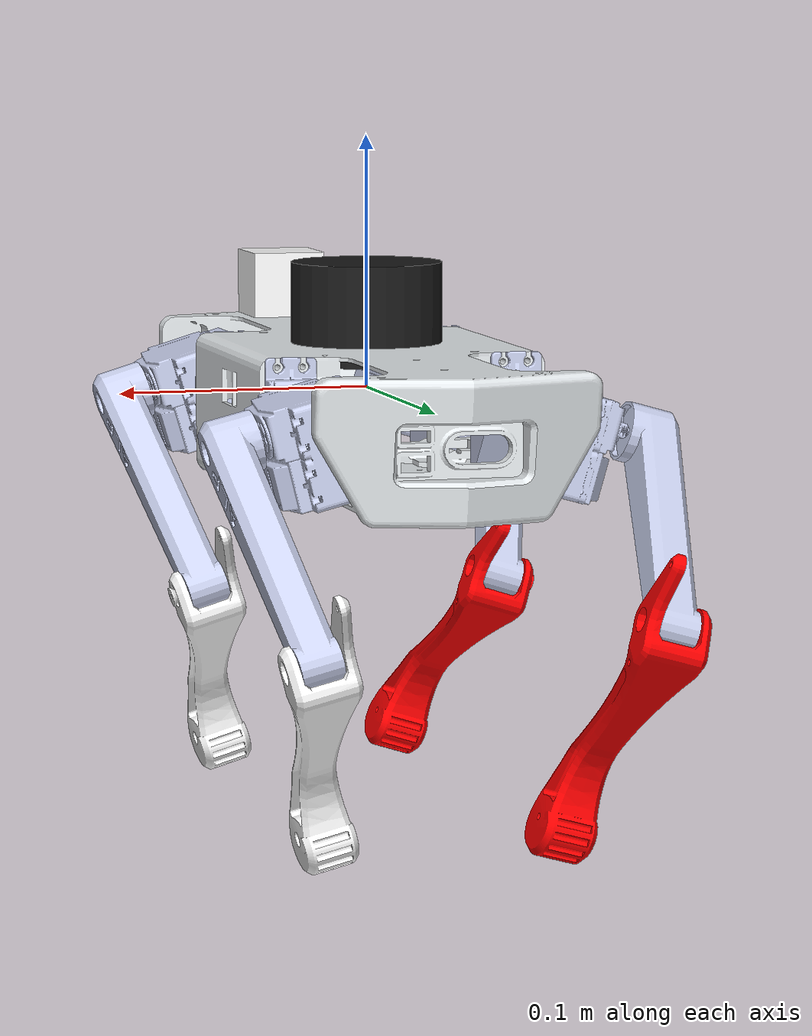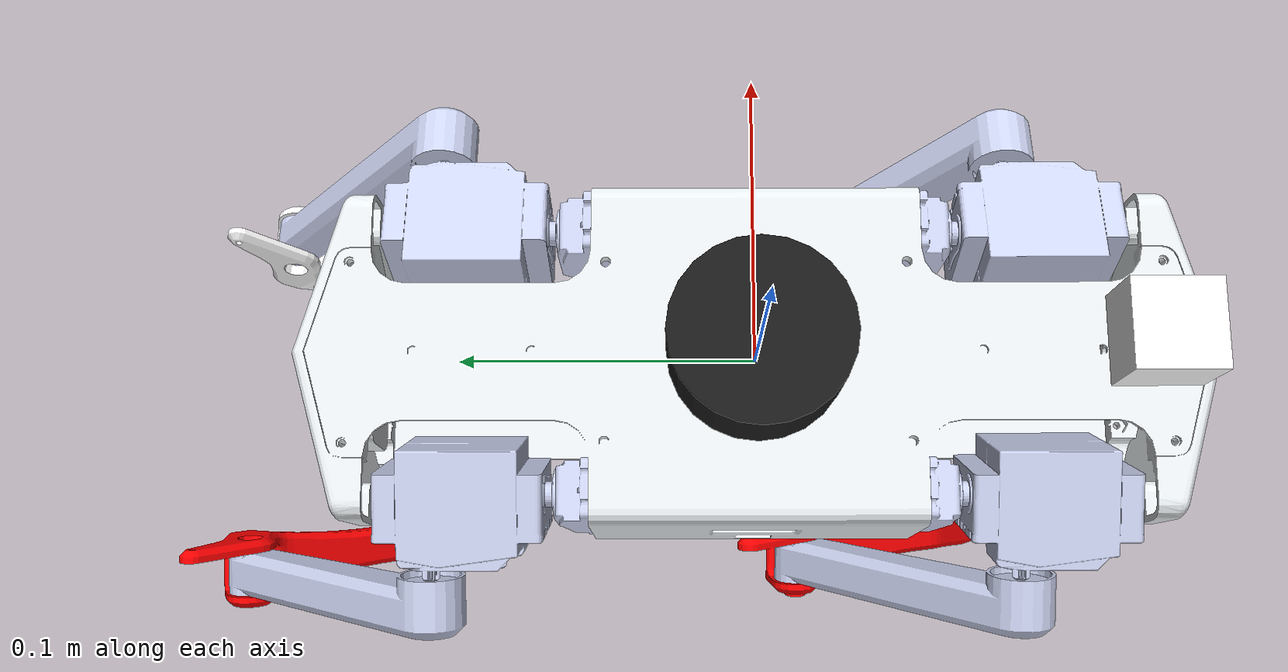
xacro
<?xml version="1.0" encoding="utf-8"?>
<robot
  name="pet_bot_test5"
  xmlns:xacro="http://www.ros.org/wiki/xacro">
  <xacro:include filename="$(find pet_bot_test5)/urdf/ros2_control.xacro"/>
  <xacro:include filename="$(find pet_bot_test5)/urdf/sensors.xacro"/>
  <link
    name="base_link">
    <inertial>
      <origin xyz="0 0 0" rpy="0 0 0"/>
      <mass value="0.5"/>
      <inertia
        ixx="0.0004286"
        iyy="0.0001047"
        izz="0.0004446"
        ixy="0"
        ixz="0"
        iyz="0"/>
    </inertial>

    <visual>
      <origin
        xyz="0 0 0"
        rpy="0 0 0" />
      <geometry>
        <mesh
          filename="package://pet_bot_test5/meshes/base_link.STL" />
      </geometry>
      <material
        name="">
        <color
          rgba="0.898039215686275 0.917647058823529 0.929411764705882 1" />
      </material>
    </visual>
    <collision>
      <origin
        xyz="0 0 0"
        rpy="0 0 0" />
      <geometry>
        <mesh
          filename="package://pet_bot_test5/meshes/base_link.STL" />
      </geometry>
    </collision>
  </link>

  <link
    name="servob1_Link">
    <inertial>
      <origin
        xyz="-0.00701432076675637 0.00173887497261635 -0.020433367504248"
        rpy="0 0 0" />
      <mass
        value="0.2" />
      <inertia
        ixx="1.19698461100588E-06"
        ixy="3.9574662947928E-07"
        ixz="-2.96139129159455E-08"
        iyy="2.69524925866603E-06"
        iyz="7.34142461360652E-09"
        izz="2.99382347760638E-06" />
    </inertial>
    <visual>
      <origin
        xyz="0 0 0"
        rpy="0 0 0" />
      <geometry>
        <mesh
          filename="package://pet_bot_test5/meshes/servob1_Link.STL" />
      </geometry>
      <material
        name="">
        <color
          rgba="0.792156862745098 0.819607843137255 0.933333333333333 1" />
      </material>
    </visual>
    <collision>
      <origin
        xyz="0 0 0"
        rpy="0 0 0" />
      <geometry>
        <mesh
          filename="package://pet_bot_test5/meshes/servob1_Link.STL" />
      </geometry>
    </collision>
  </link>
  <joint
    name="servob1"
    type="fixed">
    <origin
      xyz="0.045000000000001 0.071749999999999 0"
      rpy="-1.5707963267949 -1.3277916145548 0" />
    <parent
      link="base_link" />
    <child
      link="servob1_Link" />
    <axis
      xyz="0 0 0" />
  </joint>
  <link
    name="servoroter1_Link">
    <inertial>
      <origin
        xyz="-0.0100559123880472 0.00682081914657511 0.0267496570748604"
        rpy="0 0 0" />
      <mass
        value="0.2" />
      <inertia
        ixx="6.05244658456117E-06"
        ixy="-1.4919876317334E-08"
        ixz="-3.25314692215755E-09"
        iyy="7.61118741914552E-06"
        iyz="2.7247178985995E-09"
        izz="4.16807369969767E-06" />
    </inertial>
    <visual>
      <origin
        xyz="0 0 0"
        rpy="0 0 0" />
      <geometry>
        <mesh
          filename="package://pet_bot_test5/meshes/servoroter1_Link.STL" />
      </geometry>
      <material
        name="">
        <color
          rgba="0.792156862745098 0.819607843137255 0.933333333333333 1" />
      </material>
    </visual>
    <collision>
      <origin
        xyz="0 0 0"
        rpy="0 0 0" />
      <geometry>
        <mesh
          filename="package://pet_bot_test5/meshes/servoroter1_Link.STL" />
      </geometry>
    </collision>
  </link>
  <joint
    name="servoroter1"
    type="revolute">
    <origin
      xyz="0 0 0"
      rpy="0 0 0" />
    <parent
      link="servob1_Link" />
    <child
      link="servoroter1_Link" />
    <axis
      xyz="0 0 -1" />
    <limit
      lower="-1.57"
      upper="2.57"
      effort="31.0"
      velocity="6.0" />
  </joint>
  <link
    name="upperlegb1_Link">
    <inertial>
      <origin
        xyz="1.00835618386954183 -0.0442831117998646 0.00154905531270663"
        rpy="0 0 0" />
      <mass
        value="0.2" />
      <inertia
        ixx="3.87692358553123E-05"
        ixy="-5.25240045915491E-07"
        ixz="1.79115061934609E-08"
        iyy="1.8127419400765E-06"
        iyz="1.28353535240189E-06"
        izz="3.84023070776096E-05" />
    </inertial>
    <visual>
      <origin
        xyz="0 0 0"
        rpy="0 0 0" />
      <geometry>
        <mesh
          filename="package://pet_bot_test5/meshes/upperlegb1_Link.STL" />
      </geometry>
      <material
        name="">
        <color
          rgba="0.792156862745098 0.819607843137255 0.933333333333333 1" />
      </material>
    </visual>
    <collision>
      <origin
        xyz="0 0 0"
        rpy="0 0 0" />
      <geometry>
        <mesh
          filename="package://pet_bot_test5/meshes/upperlegb1_Link.STL" />
      </geometry>
    </collision>
  </link>
  <joint
    name="upperlegb1"
    type="revolute">
    <origin
      xyz="0 0.0469999999999999 0.036900000000006"
      rpy="-0.725006133955254 0 -1.5707963267949" />
    <parent
      link="servoroter1_Link" />
    <child
      link="upperlegb1_Link" />
    <axis
      xyz="-1 0 0" />
    <limit
      lower="-1.57"
      upper="1.57"
      effort="30.0"
      velocity="5.0" />
  </joint>
  <link
    name="lowerlegb1_Link">
    <inertial>
      <origin
        xyz="-0.00822371298307881 -0.00964097280504403 0.0595272135564797"
        rpy="0 0 0" />
      <mass
        value="0.2" />
      <inertia
        ixx="3.46191495626911E-05"
        ixy="5.37318214914926E-08"
        ixz="-3.54568032865945E-07"
        iyy="3.41578318504933E-05"
        iyz="1.29770954748404E-06"
        izz="1.27772857222064E-06" />
    </inertial>
    <visual>
      <origin
        xyz="0 0 0"
        rpy="0 0 0" />
      <geometry>
        <mesh
          filename="package://pet_bot_test5/meshes/lowerlegb1_Link.STL" />
      </geometry>
      <material
        name="">
        <color
          rgba="1 1 1 1" />
      </material>
    </visual>
    <collision>
      <origin
        xyz="0 0 0"
        rpy="0 0 0" />
      <geometry>
        <mesh
          filename="package://pet_bot_test5/meshes/lowerlegb1_Link.STL" />
      </geometry>
    </collision>
  </link>
  <joint
    name="lowerlegb1"
    type="revolute">
    <origin
      xyz="0 -0.0999387312306895 0.00350000000000002"
      rpy="3.14159265358979 0 -3.14159265358979" />
    <parent
      link="upperlegb1_Link" />
    <child
      link="lowerlegb1_Link" />
    <axis
      xyz="-1 0 0" />
    <limit
      lower="-1.57"
      upper="1.57"
      effort="30.0"
      velocity="5.0" />
  </joint>
  <link name="footb1_Link">
  </link>

  <joint name="footb1_fixed_joint" type="fixed">
    <parent link="lowerlegb1_Link"/>
    <child link="footb1_Link"/>
    <origin xyz="0 0 0.10" rpy="0 0 0"/>
  </joint>
  <link
    name="servof1_Link">
    <inertial>
      <origin
        xyz="-0.00204892481026133 0.00693010022375108 -0.0204333675042481"
        rpy="0 0 0" />
      <mass
        value="0.2" />
      <inertia
        ixx="2.65714473391169E-06"
        ixy="4.60710432151016E-07"
        ixz="-8.65037362410885E-09"
        iyy="1.23508913576022E-06"
        iyz="2.92583558956171E-08"
        izz="2.99382347760638E-06" />
    </inertial>
    <visual>
      <origin
        xyz="0 0 0"
        rpy="0 0 0" />
      <geometry>
        <mesh
          filename="package://pet_bot_test5/meshes/servof1_Link.STL" />
      </geometry>
      <material
        name="">
        <color
          rgba="0.792156862745098 0.819607843137255 0.933333333333333 1" />
      </material>
    </visual>
    <collision>
      <origin
        xyz="0 0 0"
        rpy="0 0 0" />
      <geometry>
        <mesh
          filename="package://pet_bot_test5/meshes/servof1_Link.STL" />
      </geometry>
    </collision>
  </link>
  <joint
    name="servof1"
    type="fixed">
    <origin
      xyz="0.045000000000001 -0.071750000000002 0"
      rpy="-1.5707963267949 -0.287466448416683 3.14159265358979" />
    <parent
      link="base_link" />
    <child
      link="servof1_Link" />
    <axis
      xyz="0 0 0" />
  </joint>
  <link
    name="servoroterf1_Link">
    <inertial>
      <origin
        xyz="-0.00682082050878034 0.0100559143826442 0.0267496504429119"
        rpy="0 0 0" />
      <mass
        value="0.2" />
      <inertia
        ixx="7.61118615271098E-06"
        ixy="-1.49200557758613E-08"
        ixz="-2.72471140451307E-09"
        iyy="6.05244642310124E-06"
        iyz="3.25381222981396E-09"
        izz="4.1680724966145E-06" />
    </inertial>
    <visual>
      <origin
        xyz="0 0 0"
        rpy="0 0 0" />
      <geometry>
        <mesh
          filename="package://pet_bot_test5/meshes/servoroterf1_Link.STL" />
      </geometry>
      <material
        name="">
        <color
          rgba="0.792156862745098 0.819607843137255 0.933333333333333 1" />
      </material>
    </visual>
    <collision>
      <origin
        xyz="0 0 0"
        rpy="0 0 0" />
      <geometry>
        <mesh
          filename="package://pet_bot_test5/meshes/servoroterf1_Link.STL" />
      </geometry>
    </collision>
  </link>
  <joint
    name="servoroterf1"
    type="revolute">
    <origin
      xyz="0 0 0"
      rpy="0 0 0" />
    <parent
      link="servof1_Link" />
    <child
      link="servoroterf1_Link" />
    <axis
      xyz="0 0 -1" />
    <limit
      lower="-1.57"
      upper="1.57"
      effort="30.0"
      velocity="5.0" />
  </joint>
  <link
    name="upperlegf1_Link">
    <inertial>
      <origin
        xyz="-0.00837007622484405 -0.0441393776469056 -0.00154402752402555"
        rpy="0 0 0" />
      <mass
        value="0.2" />
      <inertia
        ixx="3.87694300465117E-05"
        ixy="5.25239783949239E-07"
        ixz="1.79115472540234E-08"
        iyy="1.8147351525034E-06"
        iyz="-1.28353541603687E-06"
        izz="3.84042992908496E-05" />
    </inertial>
    <visual>
      <origin
        xyz="0 0 0"
        rpy="0 0 0" />
      <geometry>
        <mesh
          filename="package://pet_bot_test5/meshes/upperlegf1_Link.STL" />
      </geometry>
      <material
        name="">
        <color
          rgba="0.792156862745098 0.819607843137255 0.933333333333333 1" />
      </material>
    </visual>
    <collision>
      <origin
        xyz="0 0 0"
        rpy="0 0 0" />
      <geometry>
        <mesh
          filename="package://pet_bot_test5/meshes/upperlegf1_Link.STL" />
      </geometry>
    </collision>
  </link>
  <joint
    name="upperlegf1"
    type="revolute">
    <origin
      xyz="-0.0469999999999993 0 0.016899999999999"
      rpy="0.728026894968978 0 3.14159265358979" />
    <parent
      link="servoroterf1_Link" />
    <child
      link="upperlegf1_Link" />
    <axis
      xyz="-1 0 0" />
    <limit
      lower="-1.57"
      upper="1.57"
      effort="30.0"
      velocity="5.0" />
  </joint>
  <link
    name="lowerlegf1_Link">
    <inertial>
      <origin
        xyz="-0.00808156160789165 -0.00683516479434983 0.0590456349157834"
        rpy="0 0 0" />
      <mass
        value="0.2" />
      <inertia
        ixx="3.46221596650123E-05"
        ixy="3.76142374234176E-08"
        ixz="-3.56638687909695E-07"
        iyy="3.42121838898271E-05"
        iyz="-1.95608449870027E-07"
        izz="1.23212461913626E-06" />
    </inertial>
    <visual>
      <origin
        xyz="0 0 0"
        rpy="0 0 0" />
      <geometry>
        <mesh
          filename="package://pet_bot_test5/meshes/lowerlegf1_Link.STL" />
      </geometry>
      <material
        name="">
        <color
          rgba="1 1 1 1" />
      </material>
    </visual>
    <collision>
      <origin
        xyz="0 0 0"
        rpy="0 0 0" />
      <geometry>
        <mesh
          filename="package://pet_bot_test5/meshes/lowerlegf1_Link.STL" />
      </geometry>
    </collision>
  </link>
  <joint
    name="lowerlegf1"
    type="revolute">
    <origin
      xyz="0 -0.099939 -0.0035"
      rpy="0 0 0" />
    <parent
      link="upperlegf1_Link" />
    <child
      link="lowerlegf1_Link" />
    <axis
      xyz="-1 0 0" />
    <limit
      lower="-1.57"
      upper="1.57"
      effort="30.0"
      velocity="5.0" />
  </joint>
  <link name="footf1_Link">
  </link>

  <joint name="footf1_fixed_joint" type="fixed">
    <parent link="lowerlegf1_Link"/>
    <child link="footf1_Link"/>
    <origin xyz="0 0 0.10" rpy="0 0 0"/>
  </joint>
  <link
    name="servof2_Link">
    <inertial>
      <origin
        xyz="0.00220702602674092 -0.0068813819910413 0.0164333675042481"
        rpy="0 0 0" />
      <mass
        value="0.2" />
      <inertia
        ixx="2.63531220682239E-06"
        ixy="4.92772270346873E-07"
        ixz="-9.3179216290144E-09"
        iyy="1.25692166284952E-06"
        iyz="2.90526537525713E-08"
        izz="2.99382347760638E-06" />
    </inertial>
    <visual>
      <origin
        xyz="0 0 0"
        rpy="0 0 0" />
      <geometry>
        <mesh
          filename="package://pet_bot_test5/meshes/servof2_Link.STL" />
      </geometry>
      <material
        name="">
        <color
          rgba="0.792156862745098 0.819607843137255 0.933333333333333 1" />
      </material>
    </visual>
    <collision>
      <origin
        xyz="0 0 0"
        rpy="0 0 0" />
      <geometry>
        <mesh
          filename="package://pet_bot_test5/meshes/servof2_Link.STL" />
      </geometry>
    </collision>
  </link>
  <joint
    name="servof2"
    type="fixed">
    <origin
      xyz="-0.044999999999999 -0.06775 0"
      rpy="1.5707963267949 0.310359931259129 3.14159265358979" />
    <parent
      link="base_link" />
    <child
      link="servof2_Link" />
    <axis
      xyz="0 0 0" />
  </joint>
  <link
    name="servoroterf2_Link">
    <inertial>
      <origin
        xyz="0.00682081900590156 -0.0100559124298178 -0.0307496570726056"
        rpy="0 0 0" />
      <mass
        value="0.2" />
      <inertia
        ixx="7.61118723258511E-06"
        ixy="-1.49198755757258E-08"
        ixz="-2.72471748931254E-09"
        iyy="6.05244640914838E-06"
        iyz="3.25314455081723E-09"
        izz="4.16807369396949E-06" />
    </inertial>
    <visual>
      <origin
        xyz="0 0 0"
        rpy="0 0 0" />
      <geometry>
        <mesh
          filename="package://pet_bot_test5/meshes/servoroterf2_Link.STL" />
      </geometry>
      <material
        name="">
        <color
          rgba="0.792156862745098 0.819607843137255 0.933333333333333 1" />
      </material>
    </visual>
    <collision>
      <origin
        xyz="0 0 0"
        rpy="0 0 0" />
      <geometry>
        <mesh
          filename="package://pet_bot_test5/meshes/servoroterf2_Link.STL" />
      </geometry>
    </collision>
  </link>
  <joint
    name="servoroterf2"
    type="revolute">
    <origin
      xyz="0 0 0"
      rpy="0 0 0" />
    <parent
      link="servof2_Link" />
    <child
      link="servoroterf2_Link" />
    <axis
      xyz="0 0 1" />
    <limit
      lower="-1.57"
      upper="1.57"
      effort="30.0"
      velocity="5.0" />
  </joint>
  <link
    name="upperlegf2_Link">
    <inertial>
      <origin
        xyz="-0.00837007608558005 0.0441392530184052 -0.00154761894378383"
        rpy="0 0 0" />
      <mass
        value="0.2" />
      <inertia
        ixx="3.87694309112291E-05"
        ixy="-5.25206365912559E-07"
        ixz="1.88766446977379E-08"
        iyy="1.8146595270917E-06"
        iyz="1.28245700501455E-06"
        izz="3.84043758198065E-05" />
    </inertial>
    <visual>
      <origin
        xyz="0 0 0"
        rpy="0 0 0" />
      <geometry>
        <mesh
          filename="package://pet_bot_test5/meshes/upperlegf2_Link.STL" />
      </geometry>
      <material
        name="">
        <color
          rgba="0.792156862745098 0.819607843137255 0.933333333333333 1" />
      </material>
    </visual>
    <collision>
      <origin
        xyz="0 0 0"
        rpy="0 0 0" />
      <geometry>
        <mesh
          filename="package://pet_bot_test5/meshes/upperlegf2_Link.STL" />
      </geometry>
    </collision>
  </link>
  <joint
    name="upperlegf2"
    type="revolute">
    <origin
      xyz="0.0469999999999978 0 -0.020900000000001"
      rpy="2.40379177778919 0 0" />
    <parent
      link="servoroterf2_Link" />
    <child
      link="upperlegf2_Link" />
    <axis
      xyz="-1 0 0" />
    <limit
      lower="-1.57"
      upper="1.57"
      effort="30.0"
      velocity="5.0" />
  </joint>
  <link
    name="lowerlegf2_Link">
    <inertial>
      <origin
        xyz="-0.0146078626145645 0.00489748743730422 0.0592378368059043"
        rpy="0 0 0" />
      <mass
        value="0.2" />
      <inertia
        ixx="3.46220165025562E-05"
        ixy="-2.58882667733073E-08"
        ixz="-3.57644439923662E-07"
        iyy="3.41638556216698E-05"
        iyz="1.27497674006723E-06"
        izz="1.28031038479791E-06" />
    </inertial>
    <visual>
      <origin
        xyz="0 0 0"
        rpy="0 0 0" />
      <geometry>
        <mesh
          filename="package://pet_bot_test5/meshes/lowerlegf2_Link.STL" />
      </geometry>
      <material
        name="">
        <color
          rgba="1 0 0 1" />
      </material>
    </visual>
    <collision>
      <origin
        xyz="0 0 0"
        rpy="0 0 0" />
      <geometry>
        <mesh
          filename="package://pet_bot_test5/meshes/lowerlegf2_Link.STL" />
      </geometry>
    </collision>
  </link>
  <joint
    name="lowerlegf2"
    type="revolute">
    <origin
      xyz="0.00628000000000288 0.0999387312306899 -0.00350000000000066"
      rpy="0 0 0" />
    <parent
      link="upperlegf2_Link" />
    <child
      link="lowerlegf2_Link" />
    <axis
      xyz="-1 0 0" />
    <limit
      lower="-1.57"
      upper="1.57"
      effort="30.0"
      velocity="5.0" />
  </joint>
  <link name="footf2_Link">
  </link>

  <joint name="footf2_fixed_joint" type="fixed">
    <parent link="lowerlegf2_Link"/>
    <child link="footf2_Link"/>
    <origin xyz="0 0 0.10" rpy="0 0 0"/>
  </joint>
  <link
    name="servob2_Link">
    <inertial>
      <origin
        xyz="-1.12713709893297E-09 -0.00722664389529054 0.020433367504248"
        rpy="0 0 0" />
      <mass
        value="0.2" />
      <inertia
        ixx="2.79335635397982E-06"
        ixy="1.53526700598248E-13"
        ixz="-2.50081081450251E-14"
        iyy="1.09887751569209E-06"
        iyz="3.0510331914777E-08"
        izz="2.99382347760638E-06" />
    </inertial>
    <visual>
      <origin
        xyz="0 0 0"
        rpy="0 0 0" />
      <geometry>
        <mesh
          filename="package://pet_bot_test5/meshes/servob2_Link.STL" />
      </geometry>
      <material
        name="">
        <color
          rgba="0.792156862745098 0.819607843137255 0.933333333333333 1" />
      </material>
    </visual>
    <collision>
      <origin
        xyz="0 0 0"
        rpy="0 0 0" />
      <geometry>
        <mesh
          filename="package://pet_bot_test5/meshes/servob2_Link.STL" />
      </geometry>
    </collision>
  </link>
  <joint
    name="servob2"
    type="fixed">
    <origin
      xyz="-0.044999999999999 0.071750000000003 0"
      rpy="1.5707963267949 0 0" />
    <parent
      link="base_link" />
    <child
      link="servob2_Link" />
    <axis
      xyz="0 0 0" />
  </joint>
  <link
    name="servoroterb2_Link">
    <inertial>
      <origin
        xyz="-0.00378879759211461 -0.0115451297270746 -0.0267496504430722"
        rpy="0 0 0" />
      <mass
        value="0.2" />
      <inertia
        ixx="7.48514703899148E-06"
        ixy="4.25204603834958E-07"
        ixz="1.72362879304459E-09"
        iyy="6.17848558288742E-06"
        iyz="3.87820162226551E-09"
        izz="4.16807249734274E-06" />
    </inertial>
    <visual>
      <origin
        xyz="0 0 0"
        rpy="0 0 0" />
      <geometry>
        <mesh
          filename="package://pet_bot_test5/meshes/servoroterb2_Link.STL" />
      </geometry>
      <material
        name="">
        <color
          rgba="0.792156862745098 0.819607843137255 0.933333333333333 1" />
      </material>
    </visual>
    <collision>
      <origin
        xyz="0 0 0"
        rpy="0 0 0" />
      <geometry>
        <mesh
          filename="package://pet_bot_test5/meshes/servoroterb2_Link.STL" />
      </geometry>
    </collision>
  </link>
  <joint
    name="servoroterb2"
    type="revolute">
    <origin
      xyz="0 0 0"
      rpy="0 0 0" />
    <parent
      link="servob2_Link" />
    <child
      link="servoroterb2_Link" />
    <axis
      xyz="0 0 1" />
    <limit
      lower="-1.57"
      upper="1.57"
      effort="30.0"
      velocity="5.0" />
  </joint>
  <link
    name="upperlegb2_Link">
    <inertial>
      <origin
        xyz="0.0156322782166043 -0.0241845153817751 -0.0345176473799781"
        rpy="0 0 0" />
      <mass
        value="0.2" />
      <inertia
        ixx="3.78363779213777E-05"
        ixy="3.58569246813754E-06"
        ixz="4.52848472857039E-06"
        iyy="2.51046667616474E-05"
        iyz="-1.73062887317303E-05"
        izz="1.60474189638865E-05" />
    </inertial>
    <visual>
      <origin
        xyz="0 0 0"
        rpy="0 0 0" />
      <geometry>
        <mesh
          filename="package://pet_bot_test5/meshes/upperlegb2_Link.STL" />
      </geometry>
      <material
        name="">
        <color
          rgba="0.792156862745098 0.819607843137255 0.933333333333333 1" />
      </material>
    </visual>
    <collision>
      <origin
        xyz="0 0 0"
        rpy="0 0 0" />
      <geometry>
        <mesh
          filename="package://pet_bot_test5/meshes/upperlegb2_Link.STL" />
      </geometry>
    </collision>
  </link>
  <joint
    name="upperlegb2"
    type="revolute">
    <origin
      xyz="-0.0451837737110403 -0.0129393428438027 -0.036900000000002"
      rpy="0 0 0" />
    <parent
      link="servoroterb2_Link" />
    <child
      link="upperlegb2_Link" />
    <axis
      xyz="0.961356887468951 0.275305166889419 0" />
    <limit
      lower="-1.57"
      upper="1.57"
      effort="30.0"
      velocity="5.0" />
  </joint>
  <link
    name="lowerlegb2_Link">
    <inertial>
      <origin
        xyz="0.0264771211772229 -0.0453328699675907 0.0323827163420254"
        rpy="0 0 0" />
      <mass
        value="0.2" />
      <inertia
        ixx="3.3255296669443E-05"
        ixy="5.06258722816017E-06"
        ixz="-4.26625546240642E-06"
        iyy="1.58912732115698E-05"
        iyz="1.5608261788898E-05"
        izz="2.09078837707081E-05" />
    </inertial>
    <visual>
      <origin
        xyz="0 0 0"
        rpy="0 0 0" />
      <geometry>
        <mesh
          filename="package://pet_bot_test5/meshes/lowerlegb2_Link.STL" />
      </geometry>
      <material
        name="">
        <color
          rgba="1 0 0 1" />
      </material>
    </visual>
    <collision>
      <origin
        xyz="0 0 0"
        rpy="0 0 0" />
      <geometry>
        <mesh
          filename="package://pet_bot_test5/meshes/lowerlegb2_Link.STL" />
      </geometry>
    </collision>
  </link>
  <joint
    name="lowerlegb2"
    type="revolute">
    <origin
      xyz="0.0128499340788746 -0.0612170589481467 -0.0781511413091099"
      rpy="0 0 0" />
    <parent
      link="upperlegb2_Link" />
    <child
      link="lowerlegb2_Link" />
    <axis
      xyz="0.961356887468951 0.275305166889419 0" />
    <limit
      lower="-1.57"
      upper="1.57"
      effort="30.0"
      velocity="5.0" />
  </joint>
  <link name="footb2_Link">
  </link>

  <joint name="footb2_fixed_joint" type="fixed">
    <parent link="lowerlegb2_Link"/>
    <child link="footb2_Link"/>
    <origin xyz="0 0 0.10" rpy="0 0 0"/>
  </joint>

  <link name="lidar_link">

    <visual>
      <geometry>
        <cylinder radius="0.03" length="0.04"/>
      </geometry>
      <material name="black">
        <color rgba="0.1 0.1 0.1 1"/>
      </material>
    </visual>

    <collision>
      <geometry>
        <cylinder radius="0.03" length="0.04"/>
      </geometry>
    </collision>

    <inertial>
      <mass value="0.01"/>
      <origin xyz="0 0 0"/>
      <inertia
        ixx="0.0001" ixy="0" ixz="0"
        iyy="0.0001" iyz="0"
        izz="0.0001"/>
    </inertial>

  </link>

  <joint name="lidar_joint" type="fixed">
  <parent link="base_link"/>
  <child link="lidar_link"/>

  <origin xyz="0 0 0.03" rpy="0 0 0"/>
</joint>

<link name="depth_camera">

    <visual>
      <geometry>
        <box size="0.03 0.03 0.03"/>
      </geometry>
      <material name="white">
        <color rgba="1 1 1 1"/>
      </material>
    </visual>

    <collision>
      <geometry>
        <box size="0.03 0.03 0.03"/>
      </geometry>
    </collision>

    <inertial>
      <mass value="0.01"/>
      <origin xyz="0 0 0"/>
      <inertia
        ixx="0.0001" ixy="0" ixz="0"
        iyy="0.0001" iyz="0"
        izz="0.0001"/>
    </inertial>

  </link>

  <joint name="depth_camera_joint" type="fixed">
    <parent link="base_link"/>
    <child link="depth_camera"/>
    <origin xyz="0.003 -0.13 0.030" rpy="0 0 -1.57"/>
  </joint>
 <link name="imu_link">
 <visual>
      <geometry>
        <box size="0.02 0.02 0.005"/>
      </geometry>
      <material name="imu_color">
        <color rgba="1.0 0.2 0.0 1.0"/>
      </material>
    </visual>
    <collision>
      <geometry>
        <box size="0.02 0.02 0.005"/>
      </geometry>
    </collision>
    <inertial>
      <mass value="0.001"/>
      <origin xyz="0 0 0" rpy="0 0 0"/>
      <inertia ixx="1e-7" ixy="0" ixz="0" iyy="1e-7" iyz="0" izz="1e-7"/>
    </inertial>
  </link>
 <joint name="imu_joint" type="fixed">
  <parent link="base_link"/>
  <child link="imu_link"/>

  <origin xyz="0 0 0" rpy="0 0 0"/>
</joint>
</robot>
